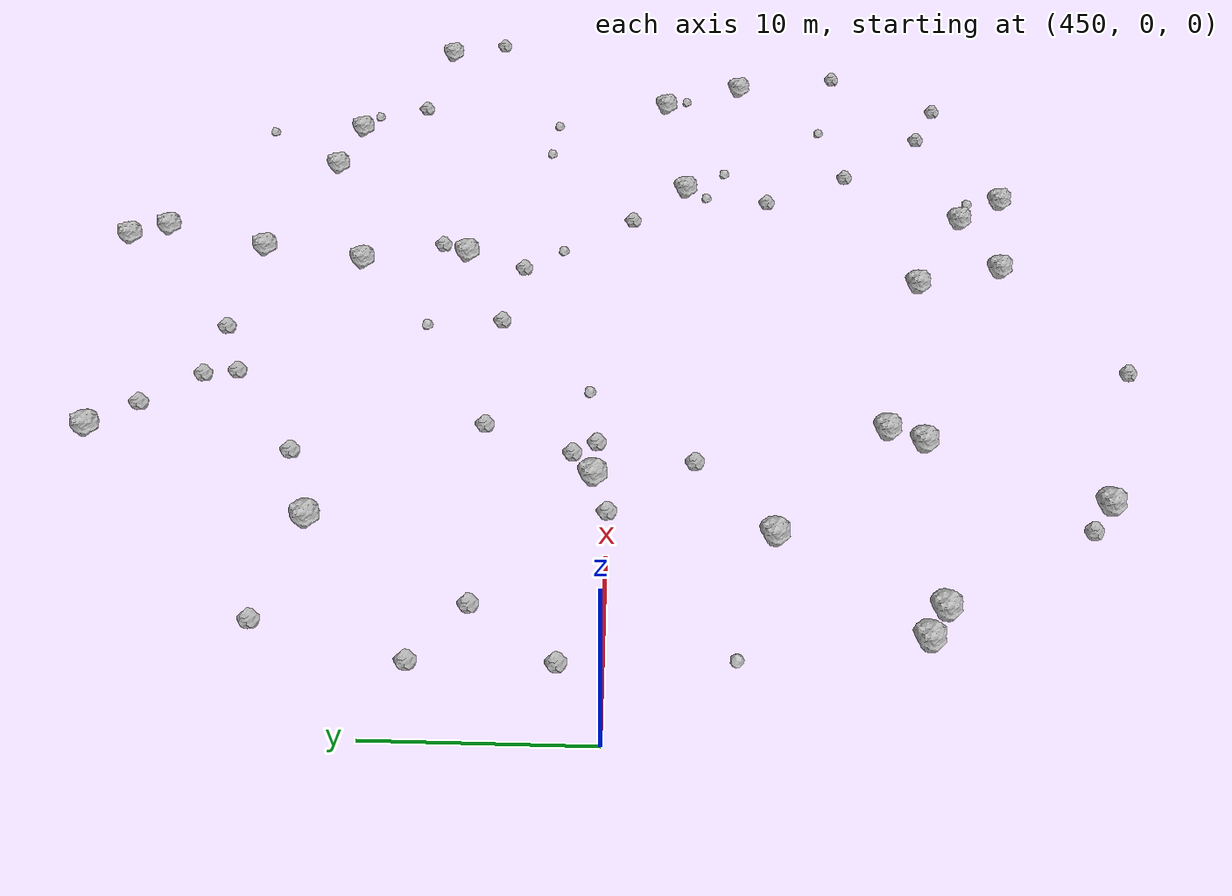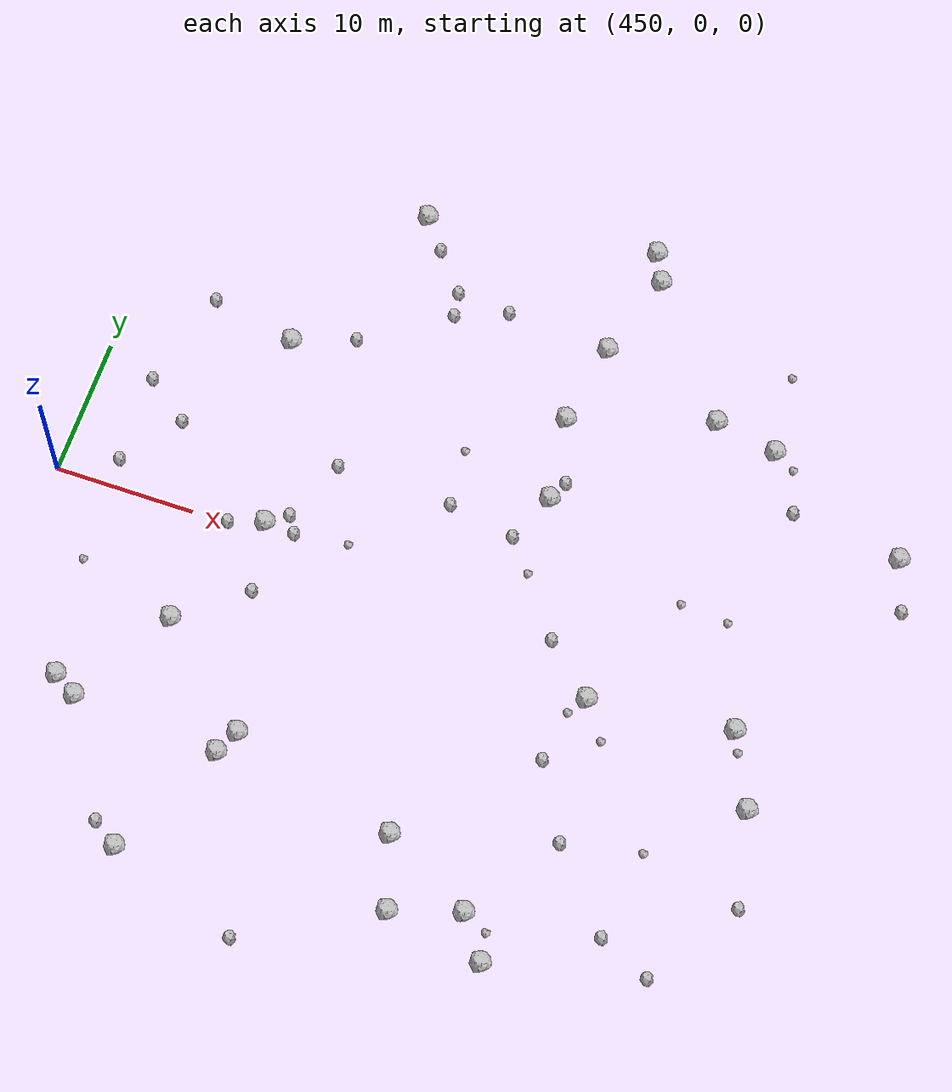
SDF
<sdf version="1.6">
 <world name="default">
  <include><uri>model://sun</uri></include>
  <model name="rock1_12_3">
   <include><uri>model://rock1</uri><pose>492.1025679240565 18.124718024204782 0.5 0 0 0</pose></include>
  </model>
  <model name="rock1_12_4">
   <include><uri>model://rock1</uri><pose>496.6048237759358 17.234764464540305 0.5 0 0 0</pose></include>
  </model>
  <model name="rock1_12_5">
   <include><uri>model://rock1</uri><pose>467.7556677874374 26.885405015446615 0.5 0 0 0</pose></include>
  </model>
  <model name="rock1_12_6">
   <include><uri>model://rock1</uri><pose>483.1869647745892 21.003349159985113 0.5 0 0 0</pose></include>
  </model>
  <model name="rock1_12_7">
   <include><uri>model://rock1</uri><pose>463.83341935228884 -24.22341666607146 0.5 0 0 0</pose></include>
  </model>
  <model name="rock1_12_8">
   <include><uri>model://rock1</uri><pose>467.8391655011745 -15.90176738986967 0.5 0 0 0</pose></include>
  </model>
  <model name="rock1_12_9">
   <include><uri>model://rock1</uri><pose>485.1222042978809 27.293917949805483 0.5 0 0 0</pose></include>
  </model>
  <model name="rock1_12_10">
   <include><uri>model://rock1</uri><pose>482.96719112345954 8.83400987875202 0.5 0 0 0</pose></include>
  </model>
  <model name="rock1_12_11">
   <include><uri>model://rock1</uri><pose>482.2696059861326 -22.558984272373205 0.5 0 0 0</pose></include>
  </model>
  <model name="rock1_12_12">
   <include><uri>model://rock1</uri><pose>465.0498470098338 0.8011038177848206 0.5 0 0 0</pose></include>
  </model>
  <model name="rock1_12_13">
   <include><uri>model://rock1</uri><pose>461.9541654879823 14.446894121411404 0.5 0 0 0</pose></include>
  </model>
  <model name="rock1_12_14">
   <include><uri>model://rock1</uri><pose>461.48174075129833 -7.903395565049305 0.5 0 0 0</pose></include>
  </model>
  <model name="rock1_12_15">
   <include><uri>model://rock1</uri><pose>480.6817630425246 -17.549838688330123 0.5 0 0 0</pose></include>
  </model>
  <model name="rock1_12_16">
   <include><uri>model://rock1</uri><pose>457.36473207068565 -15.227904755313284 0.5 0 0 0</pose></include>
  </model>
  <model name="rock1_12_17">
   <include><uri>model://rock1</uri><pose>489.19450923027875 -23.896446835174835 0.5 0 0 0</pose></include>
  </model>
  <model name="rock1_12_18">
   <include><uri>model://rock1</uri><pose>468.6606633998206 -14.149535358851697 0.5 0 0 0</pose></include>
  </model>
  <model name="rock1_12_19">
   <include><uri>model://rock1</uri><pose>484.1319249976938 29.408418135235983 0.5 0 0 0</pose></include>
  </model>
  <model name="rock1_12_20">
   <include><uri>model://rock1</uri><pose>487.06905776241507 -21.036704099130993 0.5 0 0 0</pose></include>
  </model>
  <model name="rock1_12_21">
   <include><uri>model://rock1</uri><pose>455.6730457558727 -14.221120731140331 0.5 0 0 0</pose></include>
  </model>
  <model name="rock1_12_22">
   <include><uri>model://rock1</uri><pose>500.0569448595697 -3.2237987280370213 0.5 0 0 0</pose></include>
  </model>
  <model name="rock1_12_23">
   <include><uri>model://rock1</uri><pose>506.9709530257496 12.257006402431088 0.5 0 0 0</pose></include>
  </model>
  <model name="rock1_12_24">
   <include><uri>model://rock1</uri><pose>502.4768483611297 -8.318092018423457 0.5 0 0 0</pose></include>
  </model>
  <model name="rock1_12_25">
   <include><uri>model://rock1</uri><pose>489.97907156985025 -4.319660729476283 0.5 0 0 0</pose></include>
  </model>
  <model name="rock1_12_26">
   <include><uri>model://rock1</uri><pose>482.11523573717676 14.956049639689162 0.5 0 0 0</pose></include>
  </model>
  <model name="rock2_12_0">
   <include><uri>model://rock2</uri><pose>499.71323411442245 -21.402215645853047 0.3 0 0 0</pose></include>
  </model>
  <model name="rock2_12_1">
   <include><uri>model://rock2</uri><pose>453.85647655734886 2.035165021367348 0.3 0 0 0</pose></include>
  </model>
  <model name="rock2_12_2">
   <include><uri>model://rock2</uri><pose>455.7851884879314 15.766618482918844 0.3 0 0 0</pose></include>
  </model>
  <model name="rock2_12_3">
   <include><uri>model://rock2</uri><pose>472.07390970447926 20.07041997088141 0.3 0 0 0</pose></include>
  </model>
  <model name="rock2_12_4">
   <include><uri>model://rock2</uri><pose>466.45013539716325 1.85739019215373 0.3 0 0 0</pose></include>
  </model>
  <model name="rock2_12_5">
   <include><uri>model://rock2</uri><pose>499.1125021029031 13.244726480247458 0.3 0 0 0</pose></include>
  </model>
  <model name="rock2_12_6">
   <include><uri>model://rock2</uri><pose>496.0650162462123 -19.750115594737906 0.3 0 0 0</pose></include>
  </model>
  <model name="rock2_12_7">
   <include><uri>model://rock2</uri><pose>473.1765248613081 -27.600123372363463 0.3 0 0 0</pose></include>
  </model>
  <model name="rock2_12_8">
   <include><uri>model://rock2</uri><pose>471.78985132320577 21.84645856209393 0.3 0 0 0</pose></include>
  </model>
  <model name="rock2_12_9">
   <include><uri>model://rock2</uri><pose>467.19614629311235 0.6591054308029278 0.3 0 0 0</pose></include>
  </model>
  <model name="rock2_12_10">
   <include><uri>model://rock2</uri><pose>462.57874815925027 0.05150259263383816 0.3 0 0 0</pose></include>
  </model>
  <model name="rock2_12_11">
   <include><uri>model://rock2</uri><pose>481.45151649891324 5.313144985253828 0.3 0 0 0</pose></include>
  </model>
  <model name="rock2_12_12">
   <include><uri>model://rock2</uri><pose>491.45444816726746 -14.502271787874268 0.3 0 0 0</pose></include>
  </model>
  <model name="rock2_12_13">
   <include><uri>model://rock2</uri><pose>486.39109365893205 -1.0321156103695905 0.3 0 0 0</pose></include>
  </model>
  <model name="rock2_12_14">
   <include><uri>model://rock2</uri><pose>476.63126505094857 6.2106039993938325 0.3 0 0 0</pose></include>
  </model>
  <model name="rock2_12_15">
   <include><uri>model://rock2</uri><pose>465.9671258035386 -4.256904674161827 0.3 0 0 0</pose></include>
  </model>
  <model name="rock2_12_16">
   <include><uri>model://rock2</uri><pose>508.17291477713707 8.617040120603619 0.3 0 0 0</pose></include>
  </model>
  <model name="rock2_12_17">
   <include><uri>model://rock2</uri><pose>469.4912211801969 24.667738172768075 0.3 0 0 0</pose></include>
  </model>
  <model name="rock2_12_18">
   <include><uri>model://rock2</uri><pose>456.9035311890026 6.130021801592314 0.3 0 0 0</pose></include>
  </model>
  <model name="rock2_12_19">
   <include><uri>model://rock2</uri><pose>461.97934136118886 -22.98044749357699 0.3 0 0 0</pose></include>
  </model>
  <model name="rock2_12_20">
   <include><uri>model://rock2</uri><pose>483.6135604284168 10.320237794171234 0.3 0 0 0</pose></include>
  </model>
  <model name="rock2_12_21">
   <include><uri>model://rock2</uri><pose>466.23480077954974 16.05205005177085 0.3 0 0 0</pose></include>
  </model>
  <model name="rock2_12_22">
   <include><uri>model://rock2</uri><pose>453.801571706578 8.524902397543386 0.3 0 0 0</pose></include>
  </model>
  <model name="rock2_12_23">
   <include><uri>model://rock2</uri><pose>475.7032240915705 21.51232450984628 0.3 0 0 0</pose></include>
  </model>
  <model name="rock2_12_24">
   <include><uri>model://rock2</uri><pose>468.347372116464 6.426430914893594 0.3 0 0 0</pose></include>
  </model>
  <model name="rock2_12_25">
   <include><uri>model://rock2</uri><pose>488.5288867901045 -9.35656878196788 0.3 0 0 0</pose></include>
  </model>
  <model name="rock2_12_26">
   <include><uri>model://rock2</uri><pose>503.91370945154813 -14.976610893135893 0.3 0 0 0</pose></include>
  </model>
  <model name="rock3_12_0">
   <include><uri>model://rock3</uri><pose>493.8628366234753 4.298654070288656 0.2 0 0 0</pose></include>
  </model>
  <model name="rock3_12_1">
   <include><uri>model://rock3</uri><pose>488.82107720325007 -21.884685772821392 0.2 0 0 0</pose></include>
  </model>
  <model name="rock3_12_2">
   <include><uri>model://rock3</uri><pose>489.0455046184326 -5.649651500427872 0.2 0 0 0</pose></include>
  </model>
  <model name="rock3_12_3">
   <include><uri>model://rock3</uri><pose>454.22729638389126 -5.782838908070865 0.2 0 0 0</pose></include>
  </model>
  <model name="rock3_12_4">
   <include><uri>model://rock3</uri><pose>496.0453955812656 23.094094335772034 0.2 0 0 0</pose></include>
  </model>
  <model name="rock3_12_5">
   <include><uri>model://rock3</uri><pose>496.86902174513284 -13.409325880509734 0.2 0 0 0</pose></include>
  </model>
  <model name="rock3_12_6">
   <include><uri>model://rock3</uri><pose>491.7863830164472 -6.878853426206085 0.2 0 0 0</pose></include>
  </model>
  <model name="rock3_12_7">
   <include><uri>model://rock3</uri><pose>498.158105879863 16.31971041659032 0.2 0 0 0</pose></include>
  </model>
  <model name="rock3_12_8">
   <include><uri>model://rock3</uri><pose>500.6683272264197 -4.688307066061547 0.2 0 0 0</pose></include>
  </model>
  <model name="rock3_12_9">
   <include><uri>model://rock3</uri><pose>476.25427863007224 10.36374728890172 0.2 0 0 0</pose></include>
  </model>
  <model name="rock3_12_10">
   <include><uri>model://rock3</uri><pose>470.98889088947084 1.092899375348516 0.2 0 0 0</pose></include>
  </model>
  <model name="rock3_12_11">
   <include><uri>model://rock3</uri><pose>497.2778921737505 3.9905205410463864 0.2 0 0 0</pose></include>
  </model>
  <model name="rock3_12_12">
   <include><uri>model://rock3</uri><pose>483.2899150871161 3.0494631845746625 0.2 0 0 0</pose></include>
  </model>
 </world>
</sdf>
